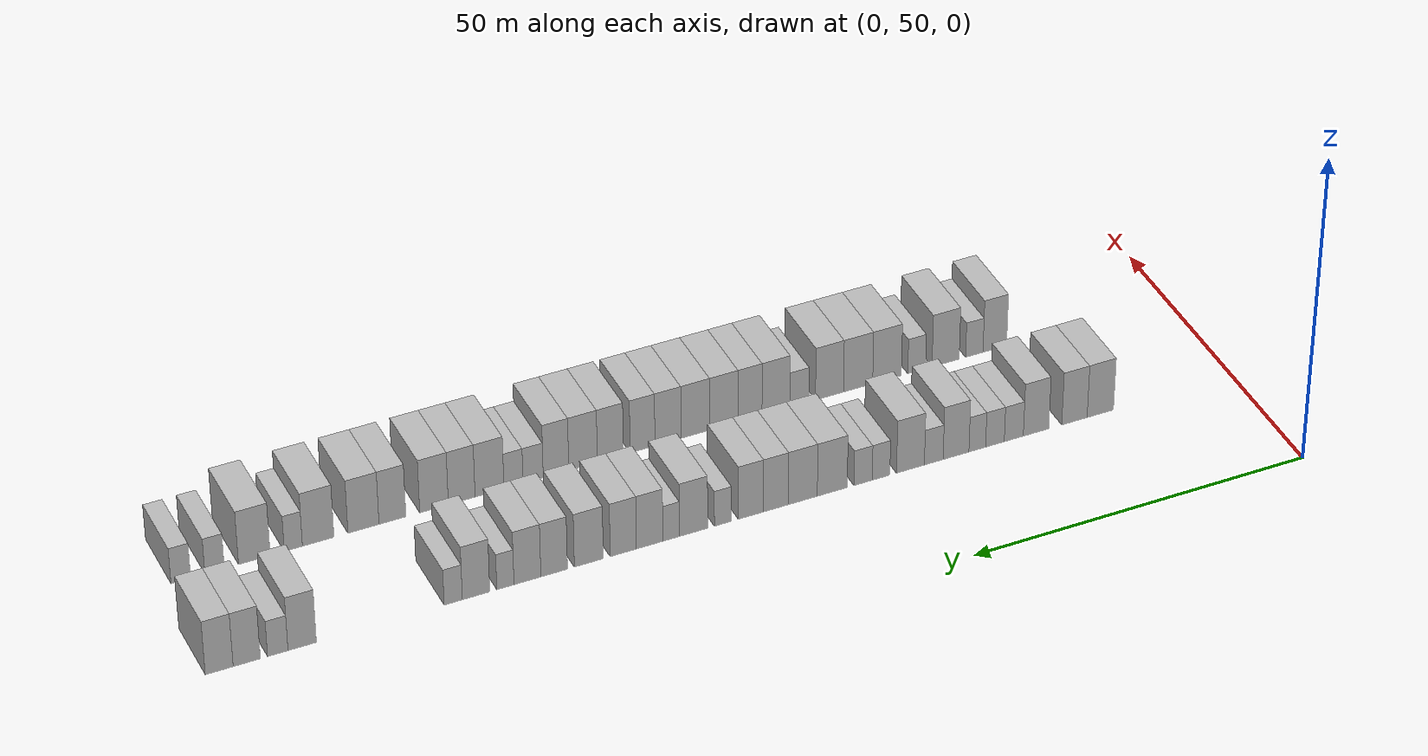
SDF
<sdf version="1.6">
 <world name="default">
  <model name="building_61">
   <static>1</static>
   <pose>25.0000 70.6246 0 0.000000 0.000000 0.000000</pose>
   <link name="link">
    <pose>0 0 4.50 0 0 0</pose>
    <collision name="collision"><geometry><box><size>10.0000 4.0791 9.0000</size></box></geometry></collision>
    <visual name="visual">
     <cast_shadows>0</cast_shadows>
     <geometry><box><size>10.0000 4.0791 9.0000</size></box></geometry>
     <material>
      <script>
       <uri>model://HANNAS_wall/materials/scripts</uri>
       <uri>model://HANNAS_wall/materials/textures</uri>
       <name>vrc/HANNAS_wall</name>
      </script>
     </material>
    </visual>
   </link>
  </model>
  <model name="building_62">
   <static>1</static>
   <pose>25.0000 74.6228 0 0.000000 0.000000 0.000000</pose>
   <link name="link">
    <pose>0 0 4.50 0 0 0</pose>
    <collision name="collision"><geometry><box><size>10.0000 3.9172 9.0000</size></box></geometry></collision>
    <visual name="visual">
     <cast_shadows>0</cast_shadows>
     <geometry><box><size>10.0000 3.9172 9.0000</size></box></geometry>
     <material>
      <script>
       <uri>model://HANNAS_wall/materials/scripts</uri>
       <uri>model://HANNAS_wall/materials/textures</uri>
       <name>vrc/HANNAS_wall</name>
      </script>
     </material>
    </visual>
   </link>
  </model>
  <model name="building_63">
   <static>1</static>
   <pose>25.0000 80.5359 0 0.000000 0.000000 0.000000</pose>
   <link name="link">
    <pose>0 0 4.50 0 0 0</pose>
    <collision name="collision"><geometry><box><size>10.0000 3.9089 9.0000</size></box></geometry></collision>
    <visual name="visual">
     <cast_shadows>0</cast_shadows>
     <geometry><box><size>10.0000 3.9089 9.0000</size></box></geometry>
     <material>
      <script>
       <uri>model://HANNAS_wall/materials/scripts</uri>
       <uri>model://HANNAS_wall/materials/textures</uri>
       <name>vrc/HANNAS_wall</name>
      </script>
     </material>
    </visual>
   </link>
  </model>
  <model name="building_64">
   <static>1</static>
   <pose>25.0000 83.9480 0 0.000000 0.000000 0.000000</pose>
   <link name="link">
    <pose>0 0 3.00 0 0 0</pose>
    <collision name="collision"><geometry><box><size>10.0000 2.9154 6.0000</size></box></geometry></collision>
    <visual name="visual">
     <cast_shadows>0</cast_shadows>
     <geometry><box><size>10.0000 2.9154 6.0000</size></box></geometry>
     <material>
      <script>
       <uri>model://HANNAS_wall/materials/scripts</uri>
       <uri>model://HANNAS_wall/materials/textures</uri>
       <name>vrc/HANNAS_wall</name>
      </script>
     </material>
    </visual>
   </link>
  </model>
  <model name="building_65">
   <static>1</static>
   <pose>25.0000 86.8324 0 0.000000 0.000000 0.000000</pose>
   <link name="link">
    <pose>0 0 3.00 0 0 0</pose>
    <collision name="collision"><geometry><box><size>10.0000 2.8534 6.0000</size></box></geometry></collision>
    <visual name="visual">
     <cast_shadows>0</cast_shadows>
     <geometry><box><size>10.0000 2.8534 6.0000</size></box></geometry>
     <material>
      <script>
       <uri>model://HANNAS_wall/materials/scripts</uri>
       <uri>model://HANNAS_wall/materials/textures</uri>
       <name>vrc/HANNAS_wall</name>
      </script>
     </material>
    </visual>
   </link>
  </model>
  <model name="building_66">
   <static>1</static>
   <pose>25.0000 89.5290 0 0.000000 0.000000 0.000000</pose>
   <link name="link">
    <pose>0 0 3.00 0 0 0</pose>
    <collision name="collision"><geometry><box><size>10.0000 2.5396 6.0000</size></box></geometry></collision>
    <visual name="visual">
     <cast_shadows>0</cast_shadows>
     <geometry><box><size>10.0000 2.5396 6.0000</size></box></geometry>
     <material>
      <script>
       <uri>model://HANNAS_wall/materials/scripts</uri>
       <uri>model://HANNAS_wall/materials/textures</uri>
       <name>vrc/HANNAS_wall</name>
      </script>
     </material>
    </visual>
   </link>
  </model>
  <model name="building_67">
   <static>1</static>
   <pose>25.0000 92.7599 0 0.000000 0.000000 0.000000</pose>
   <link name="link">
    <pose>0 0 4.50 0 0 0</pose>
    <collision name="collision"><geometry><box><size>10.0000 3.9223 9.0000</size></box></geometry></collision>
    <visual name="visual">
     <cast_shadows>0</cast_shadows>
     <geometry><box><size>10.0000 3.9223 9.0000</size></box></geometry>
     <material>
      <script>
       <uri>model://HANNAS_wall/materials/scripts</uri>
       <uri>model://HANNAS_wall/materials/textures</uri>
       <name>vrc/HANNAS_wall</name>
      </script>
     </material>
    </visual>
   </link>
  </model>
  <model name="building_68">
   <static>1</static>
   <pose>25.0000 96.1398 0 0.000000 0.000000 0.000000</pose>
   <link name="link">
    <pose>0 0 3.00 0 0 0</pose>
    <collision name="collision"><geometry><box><size>10.0000 2.8376 6.0000</size></box></geometry></collision>
    <visual name="visual">
     <cast_shadows>0</cast_shadows>
     <geometry><box><size>10.0000 2.8376 6.0000</size></box></geometry>
     <material>
      <script>
       <uri>model://HANNAS_wall/materials/scripts</uri>
       <uri>model://HANNAS_wall/materials/textures</uri>
       <name>vrc/HANNAS_wall</name>
      </script>
     </material>
    </visual>
   </link>
  </model>
  <model name="building_69">
   <static>1</static>
   <pose>25.0000 99.6629 0 0.000000 0.000000 0.000000</pose>
   <link name="link">
    <pose>0 0 4.50 0 0 0</pose>
    <collision name="collision"><geometry><box><size>10.0000 4.2086 9.0000</size></box></geometry></collision>
    <visual name="visual">
     <cast_shadows>0</cast_shadows>
     <geometry><box><size>10.0000 4.2086 9.0000</size></box></geometry>
     <material>
      <script>
       <uri>model://HANNAS_wall/materials/scripts</uri>
       <uri>model://HANNAS_wall/materials/textures</uri>
       <name>vrc/HANNAS_wall</name>
      </script>
     </material>
    </visual>
   </link>
  </model>
  <model name="building_70">
   <static>1</static>
   <pose>25.0000 104.0911 0 0.000000 0.000000 0.000000</pose>
   <link name="link">
    <pose>0 0 3.00 0 0 0</pose>
    <collision name="collision"><geometry><box><size>10.0000 2.6479 6.0000</size></box></geometry></collision>
    <visual name="visual">
     <cast_shadows>0</cast_shadows>
     <geometry><box><size>10.0000 2.6479 6.0000</size></box></geometry>
     <material>
      <script>
       <uri>model://HANNAS_wall/materials/scripts</uri>
       <uri>model://HANNAS_wall/materials/textures</uri>
       <name>vrc/HANNAS_wall</name>
      </script>
     </material>
    </visual>
   </link>
  </model>
  <model name="building_71">
   <static>1</static>
   <pose>25.0000 106.7862 0 0.000000 0.000000 0.000000</pose>
   <link name="link">
    <pose>0 0 3.00 0 0 0</pose>
    <collision name="collision"><geometry><box><size>10.0000 2.7424 6.0000</size></box></geometry></collision>
    <visual name="visual">
     <cast_shadows>0</cast_shadows>
     <geometry><box><size>10.0000 2.7424 6.0000</size></box></geometry>
     <material>
      <script>
       <uri>model://HANNAS_wall/materials/scripts</uri>
       <uri>model://HANNAS_wall/materials/textures</uri>
       <name>vrc/HANNAS_wall</name>
      </script>
     </material>
    </visual>
   </link>
  </model>
  <model name="building_72">
   <static>1</static>
   <pose>25.0000 111.3942 0 0.000000 0.000000 0.000000</pose>
   <link name="link">
    <pose>0 0 4.50 0 0 0</pose>
    <collision name="collision"><geometry><box><size>10.0000 4.4736 9.0000</size></box></geometry></collision>
    <visual name="visual">
     <cast_shadows>0</cast_shadows>
     <geometry><box><size>10.0000 4.4736 9.0000</size></box></geometry>
     <material>
      <script>
       <uri>model://HANNAS_wall/materials/scripts</uri>
       <uri>model://HANNAS_wall/materials/textures</uri>
       <name>vrc/HANNAS_wall</name>
      </script>
     </material>
    </visual>
   </link>
  </model>
  <model name="building_73">
   <static>1</static>
   <pose>25.0000 115.7814 0 0.000000 0.000000 0.000000</pose>
   <link name="link">
    <pose>0 0 4.50 0 0 0</pose>
    <collision name="collision"><geometry><box><size>10.0000 4.3008 9.0000</size></box></geometry></collision>
    <visual name="visual">
     <cast_shadows>0</cast_shadows>
     <geometry><box><size>10.0000 4.3008 9.0000</size></box></geometry>
     <material>
      <script>
       <uri>model://HANNAS_wall/materials/scripts</uri>
       <uri>model://HANNAS_wall/materials/textures</uri>
       <name>vrc/HANNAS_wall</name>
      </script>
     </material>
    </visual>
   </link>
  </model>
  <model name="building_74">
   <static>1</static>
   <pose>25.0000 119.7769 0 0.000000 0.000000 0.000000</pose>
   <link name="link">
    <pose>0 0 4.50 0 0 0</pose>
    <collision name="collision"><geometry><box><size>10.0000 3.6903 9.0000</size></box></geometry></collision>
    <visual name="visual">
     <cast_shadows>0</cast_shadows>
     <geometry><box><size>10.0000 3.6903 9.0000</size></box></geometry>
     <material>
      <script>
       <uri>model://HANNAS_wall/materials/scripts</uri>
       <uri>model://HANNAS_wall/materials/textures</uri>
       <name>vrc/HANNAS_wall</name>
      </script>
     </material>
    </visual>
   </link>
  </model>
  <model name="building_75">
   <static>1</static>
   <pose>25.0000 123.4768 0 0.000000 0.000000 0.000000</pose>
   <link name="link">
    <pose>0 0 4.50 0 0 0</pose>
    <collision name="collision"><geometry><box><size>10.0000 3.7094 9.0000</size></box></geometry></collision>
    <visual name="visual">
     <cast_shadows>0</cast_shadows>
     <geometry><box><size>10.0000 3.7094 9.0000</size></box></geometry>
     <material>
      <script>
       <uri>model://HANNAS_wall/materials/scripts</uri>
       <uri>model://HANNAS_wall/materials/textures</uri>
       <name>vrc/HANNAS_wall</name>
      </script>
     </material>
    </visual>
   </link>
  </model>
  <model name="building_76">
   <static>1</static>
   <pose>25.0000 127.5889 0 0.000000 0.000000 0.000000</pose>
   <link name="link">
    <pose>0 0 3.00 0 0 0</pose>
    <collision name="collision"><geometry><box><size>10.0000 2.5148 6.0000</size></box></geometry></collision>
    <visual name="visual">
     <cast_shadows>0</cast_shadows>
     <geometry><box><size>10.0000 2.5148 6.0000</size></box></geometry>
     <material>
      <script>
       <uri>model://HANNAS_wall/materials/scripts</uri>
       <uri>model://HANNAS_wall/materials/textures</uri>
       <name>vrc/HANNAS_wall</name>
      </script>
     </material>
    </visual>
   </link>
  </model>
  <model name="building_77">
   <static>1</static>
   <pose>25.0000 131.9084 0 0.000000 0.000000 0.000000</pose>
   <link name="link">
    <pose>0 0 4.50 0 0 0</pose>
    <collision name="collision"><geometry><box><size>10.0000 4.1241 9.0000</size></box></geometry></collision>
    <visual name="visual">
     <cast_shadows>0</cast_shadows>
     <geometry><box><size>10.0000 4.1241 9.0000</size></box></geometry>
     <material>
      <script>
       <uri>model://HANNAS_wall/materials/scripts</uri>
       <uri>model://HANNAS_wall/materials/textures</uri>
       <name>vrc/HANNAS_wall</name>
      </script>
     </material>
    </visual>
   </link>
  </model>
  <model name="building_78">
   <static>1</static>
   <pose>25.0000 135.1835 0 0.000000 0.000000 0.000000</pose>
   <link name="link">
    <pose>0 0 3.00 0 0 0</pose>
    <collision name="collision"><geometry><box><size>10.0000 2.4263 6.0000</size></box></geometry></collision>
    <visual name="visual">
     <cast_shadows>0</cast_shadows>
     <geometry><box><size>10.0000 2.4263 6.0000</size></box></geometry>
     <material>
      <script>
       <uri>model://HANNAS_wall/materials/scripts</uri>
       <uri>model://HANNAS_wall/materials/textures</uri>
       <name>vrc/HANNAS_wall</name>
      </script>
     </material>
    </visual>
   </link>
  </model>
  <model name="building_79">
   <static>1</static>
   <pose>25.0000 138.3177 0 0.000000 0.000000 0.000000</pose>
   <link name="link">
    <pose>0 0 4.50 0 0 0</pose>
    <collision name="collision"><geometry><box><size>10.0000 3.8421 9.0000</size></box></geometry></collision>
    <visual name="visual">
     <cast_shadows>0</cast_shadows>
     <geometry><box><size>10.0000 3.8421 9.0000</size></box></geometry>
     <material>
      <script>
       <uri>model://HANNAS_wall/materials/scripts</uri>
       <uri>model://HANNAS_wall/materials/textures</uri>
       <name>vrc/HANNAS_wall</name>
      </script>
     </material>
    </visual>
   </link>
  </model>
  <model name="building_80">
   <static>1</static>
   <pose>25.0000 142.1424 0 0.000000 0.000000 0.000000</pose>
   <link name="link">
    <pose>0 0 4.50 0 0 0</pose>
    <collision name="collision"><geometry><box><size>10.0000 3.8073 9.0000</size></box></geometry></collision>
    <visual name="visual">
     <cast_shadows>0</cast_shadows>
     <geometry><box><size>10.0000 3.8073 9.0000</size></box></geometry>
     <material>
      <script>
       <uri>model://HANNAS_wall/materials/scripts</uri>
       <uri>model://HANNAS_wall/materials/textures</uri>
       <name>vrc/HANNAS_wall</name>
      </script>
     </material>
    </visual>
   </link>
  </model>
  <model name="building_81">
   <static>1</static>
   <pose>25.0000 147.1362 0 0.000000 0.000000 0.000000</pose>
   <link name="link">
    <pose>0 0 4.50 0 0 0</pose>
    <collision name="collision"><geometry><box><size>10.0000 4.1803 9.0000</size></box></geometry></collision>
    <visual name="visual">
     <cast_shadows>0</cast_shadows>
     <geometry><box><size>10.0000 4.1803 9.0000</size></box></geometry>
     <material>
      <script>
       <uri>model://HANNAS_wall/materials/scripts</uri>
       <uri>model://HANNAS_wall/materials/textures</uri>
       <name>vrc/HANNAS_wall</name>
      </script>
     </material>
    </visual>
   </link>
  </model>
  <model name="building_82">
   <static>1</static>
   <pose>25.0000 152.1332 0 0.000000 0.000000 0.000000</pose>
   <link name="link">
    <pose>0 0 4.50 0 0 0</pose>
    <collision name="collision"><geometry><box><size>10.0000 3.8137 9.0000</size></box></geometry></collision>
    <visual name="visual">
     <cast_shadows>0</cast_shadows>
     <geometry><box><size>10.0000 3.8137 9.0000</size></box></geometry>
     <material>
      <script>
       <uri>model://HANNAS_wall/materials/scripts</uri>
       <uri>model://HANNAS_wall/materials/textures</uri>
       <name>vrc/HANNAS_wall</name>
      </script>
     </material>
    </visual>
   </link>
  </model>
  <model name="building_83">
   <static>1</static>
   <pose>25.0000 155.9653 0 0.000000 0.000000 0.000000</pose>
   <link name="link">
    <pose>0 0 4.50 0 0 0</pose>
    <collision name="collision"><geometry><box><size>10.0000 3.8506 9.0000</size></box></geometry></collision>
    <visual name="visual">
     <cast_shadows>0</cast_shadows>
     <geometry><box><size>10.0000 3.8506 9.0000</size></box></geometry>
     <material>
      <script>
       <uri>model://HANNAS_wall/materials/scripts</uri>
       <uri>model://HANNAS_wall/materials/textures</uri>
       <name>vrc/HANNAS_wall</name>
      </script>
     </material>
    </visual>
   </link>
  </model>
  <model name="building_84">
   <static>1</static>
   <pose>25.0000 159.1176 0 0.000000 0.000000 0.000000</pose>
   <link name="link">
    <pose>0 0 3.00 0 0 0</pose>
    <collision name="collision"><geometry><box><size>10.0000 2.4538 6.0000</size></box></geometry></collision>
    <visual name="visual">
     <cast_shadows>0</cast_shadows>
     <geometry><box><size>10.0000 2.4538 6.0000</size></box></geometry>
     <material>
      <script>
       <uri>model://HANNAS_wall/materials/scripts</uri>
       <uri>model://HANNAS_wall/materials/textures</uri>
       <name>vrc/HANNAS_wall</name>
      </script>
     </material>
    </visual>
   </link>
  </model>
  <model name="building_85">
   <static>1</static>
   <pose>25.0000 163.2912 0 0.000000 0.000000 0.000000</pose>
   <link name="link">
    <pose>0 0 4.50 0 0 0</pose>
    <collision name="collision"><geometry><box><size>10.0000 3.8934 9.0000</size></box></geometry></collision>
    <visual name="visual">
     <cast_shadows>0</cast_shadows>
     <geometry><box><size>10.0000 3.8934 9.0000</size></box></geometry>
     <material>
      <script>
       <uri>model://HANNAS_wall/materials/scripts</uri>
       <uri>model://HANNAS_wall/materials/textures</uri>
       <name>vrc/HANNAS_wall</name>
      </script>
     </material>
    </visual>
   </link>
  </model>
  <model name="building_86">
   <static>1</static>
   <pose>25.0000 166.5308 0 0.000000 0.000000 0.000000</pose>
   <link name="link">
    <pose>0 0 3.00 0 0 0</pose>
    <collision name="collision"><geometry><box><size>10.0000 2.5858 6.0000</size></box></geometry></collision>
    <visual name="visual">
     <cast_shadows>0</cast_shadows>
     <geometry><box><size>10.0000 2.5858 6.0000</size></box></geometry>
     <material>
      <script>
       <uri>model://HANNAS_wall/materials/scripts</uri>
       <uri>model://HANNAS_wall/materials/textures</uri>
       <name>vrc/HANNAS_wall</name>
      </script>
     </material>
    </visual>
   </link>
  </model>
  <model name="building_87">
   <static>1</static>
   <pose>25.0000 187.7361 0 0.000000 0.000000 0.000000</pose>
   <link name="link">
    <pose>0 0 4.50 0 0 0</pose>
    <collision name="collision"><geometry><box><size>10.0000 3.9416 9.0000</size></box></geometry></collision>
    <visual name="visual">
     <cast_shadows>0</cast_shadows>
     <geometry><box><size>10.0000 3.9416 9.0000</size></box></geometry>
     <material>
      <script>
       <uri>model://HANNAS_wall/materials/scripts</uri>
       <uri>model://HANNAS_wall/materials/textures</uri>
       <name>vrc/HANNAS_wall</name>
      </script>
     </material>
    </visual>
   </link>
  </model>
  <model name="building_88">
   <static>1</static>
   <pose>25.0000 191.1183 0 0.000000 0.000000 0.000000</pose>
   <link name="link">
    <pose>0 0 3.00 0 0 0</pose>
    <collision name="collision"><geometry><box><size>10.0000 2.8229 6.0000</size></box></geometry></collision>
    <visual name="visual">
     <cast_shadows>0</cast_shadows>
     <geometry><box><size>10.0000 2.8229 6.0000</size></box></geometry>
     <material>
      <script>
       <uri>model://HANNAS_wall/materials/scripts</uri>
       <uri>model://HANNAS_wall/materials/textures</uri>
       <name>vrc/HANNAS_wall</name>
      </script>
     </material>
    </visual>
   </link>
  </model>
  <model name="building_89">
   <static>1</static>
   <pose>25.0000 195.4052 0 0.000000 0.000000 0.000000</pose>
   <link name="link">
    <pose>0 0 4.50 0 0 0</pose>
    <collision name="collision"><geometry><box><size>10.0000 3.7509 9.0000</size></box></geometry></collision>
    <visual name="visual">
     <cast_shadows>0</cast_shadows>
     <geometry><box><size>10.0000 3.7509 9.0000</size></box></geometry>
     <material>
      <script>
       <uri>model://HANNAS_wall/materials/scripts</uri>
       <uri>model://HANNAS_wall/materials/textures</uri>
       <name>vrc/HANNAS_wall</name>
      </script>
     </material>
    </visual>
   </link>
  </model>
  <model name="building_90">
   <static>1</static>
   <pose>25.0000 199.1994 0 0.000000 0.000000 0.000000</pose>
   <link name="link">
    <pose>0 0 4.50 0 0 0</pose>
    <collision name="collision"><geometry><box><size>10.0000 3.8375 9.0000</size></box></geometry></collision>
    <visual name="visual">
     <cast_shadows>0</cast_shadows>
     <geometry><box><size>10.0000 3.8375 9.0000</size></box></geometry>
     <material>
      <script>
       <uri>model://HANNAS_wall/materials/scripts</uri>
       <uri>model://HANNAS_wall/materials/textures</uri>
       <name>vrc/HANNAS_wall</name>
      </script>
     </material>
    </visual>
   </link>
  </model>
  <model name="building_148">
   <static>1</static>
   <pose>44.0000 77.2505 0 0.000000 0.000000 0.000000</pose>
   <link name="link">
    <pose>0 0 4.50 0 0 0</pose>
    <collision name="collision"><geometry><box><size>10.0000 3.6897 9.0000</size></box></geometry></collision>
    <visual name="visual">
     <cast_shadows>0</cast_shadows>
     <geometry><box><size>10.0000 3.6897 9.0000</size></box></geometry>
     <material>
      <script>
       <uri>model://HANNAS_wall/materials/scripts</uri>
       <uri>model://HANNAS_wall/materials/textures</uri>
       <name>vrc/HANNAS_wall</name>
      </script>
     </material>
    </visual>
   </link>
  </model>
  <model name="building_149">
   <static>1</static>
   <pose>44.0000 80.4499 0 0.000000 0.000000 0.000000</pose>
   <link name="link">
    <pose>0 0 3.00 0 0 0</pose>
    <collision name="collision"><geometry><box><size>10.0000 2.7090 6.0000</size></box></geometry></collision>
    <visual name="visual">
     <cast_shadows>0</cast_shadows>
     <geometry><box><size>10.0000 2.7090 6.0000</size></box></geometry>
     <material>
      <script>
       <uri>model://HANNAS_wall/materials/scripts</uri>
       <uri>model://HANNAS_wall/materials/textures</uri>
       <name>vrc/HANNAS_wall</name>
      </script>
     </material>
    </visual>
   </link>
  </model>
  <model name="building_150">
   <static>1</static>
   <pose>44.0000 84.9104 0 0.000000 0.000000 0.000000</pose>
   <link name="link">
    <pose>0 0 4.50 0 0 0</pose>
    <collision name="collision"><geometry><box><size>10.0000 4.2119 9.0000</size></box></geometry></collision>
    <visual name="visual">
     <cast_shadows>0</cast_shadows>
     <geometry><box><size>10.0000 4.2119 9.0000</size></box></geometry>
     <material>
      <script>
       <uri>model://HANNAS_wall/materials/scripts</uri>
       <uri>model://HANNAS_wall/materials/textures</uri>
       <name>vrc/HANNAS_wall</name>
      </script>
     </material>
    </visual>
   </link>
  </model>
  <model name="building_151">
   <static>1</static>
   <pose>44.0000 89.3898 0 0.000000 0.000000 0.000000</pose>
   <link name="link">
    <pose>0 0 3.00 0 0 0</pose>
    <collision name="collision"><geometry><box><size>10.0000 2.7470 6.0000</size></box></geometry></collision>
    <visual name="visual">
     <cast_shadows>0</cast_shadows>
     <geometry><box><size>10.0000 2.7470 6.0000</size></box></geometry>
     <material>
      <script>
       <uri>model://HANNAS_wall/materials/scripts</uri>
       <uri>model://HANNAS_wall/materials/textures</uri>
       <name>vrc/HANNAS_wall</name>
      </script>
     </material>
    </visual>
   </link>
  </model>
  <model name="building_152">
   <static>1</static>
   <pose>44.0000 93.9681 0 0.000000 0.000000 0.000000</pose>
   <link name="link">
    <pose>0 0 4.50 0 0 0</pose>
    <collision name="collision"><geometry><box><size>10.0000 4.4094 9.0000</size></box></geometry></collision>
    <visual name="visual">
     <cast_shadows>0</cast_shadows>
     <geometry><box><size>10.0000 4.4094 9.0000</size></box></geometry>
     <material>
      <script>
       <uri>model://HANNAS_wall/materials/scripts</uri>
       <uri>model://HANNAS_wall/materials/textures</uri>
       <name>vrc/HANNAS_wall</name>
      </script>
     </material>
    </visual>
   </link>
  </model>
  <model name="building_153">
   <static>1</static>
   <pose>44.0000 98.4104 0 0.000000 0.000000 0.000000</pose>
   <link name="link">
    <pose>0 0 4.50 0 0 0</pose>
    <collision name="collision"><geometry><box><size>10.0000 4.4751 9.0000</size></box></geometry></collision>
    <visual name="visual">
     <cast_shadows>0</cast_shadows>
     <geometry><box><size>10.0000 4.4751 9.0000</size></box></geometry>
     <material>
      <script>
       <uri>model://HANNAS_wall/materials/scripts</uri>
       <uri>model://HANNAS_wall/materials/textures</uri>
       <name>vrc/HANNAS_wall</name>
      </script>
     </material>
    </visual>
   </link>
  </model>
  <model name="building_154">
   <static>1</static>
   <pose>44.0000 102.7875 0 0.000000 0.000000 0.000000</pose>
   <link name="link">
    <pose>0 0 4.50 0 0 0</pose>
    <collision name="collision"><geometry><box><size>10.0000 4.2791 9.0000</size></box></geometry></collision>
    <visual name="visual">
     <cast_shadows>0</cast_shadows>
     <geometry><box><size>10.0000 4.2791 9.0000</size></box></geometry>
     <material>
      <script>
       <uri>model://HANNAS_wall/materials/scripts</uri>
       <uri>model://HANNAS_wall/materials/textures</uri>
       <name>vrc/HANNAS_wall</name>
      </script>
     </material>
    </visual>
   </link>
  </model>
  <model name="building_155">
   <static>1</static>
   <pose>44.0000 107.3727 0 0.000000 0.000000 0.000000</pose>
   <link name="link">
    <pose>0 0 3.00 0 0 0</pose>
    <collision name="collision"><geometry><box><size>10.0000 2.8914 6.0000</size></box></geometry></collision>
    <visual name="visual">
     <cast_shadows>0</cast_shadows>
     <geometry><box><size>10.0000 2.8914 6.0000</size></box></geometry>
     <material>
      <script>
       <uri>model://HANNAS_wall/materials/scripts</uri>
       <uri>model://HANNAS_wall/materials/textures</uri>
       <name>vrc/HANNAS_wall</name>
      </script>
     </material>
    </visual>
   </link>
  </model>
  <model name="building_156">
   <static>1</static>
   <pose>44.0000 110.9343 0 0.000000 0.000000 0.000000</pose>
   <link name="link">
    <pose>0 0 4.50 0 0 0</pose>
    <collision name="collision"><geometry><box><size>10.0000 4.2318 9.0000</size></box></geometry></collision>
    <visual name="visual">
     <cast_shadows>0</cast_shadows>
     <geometry><box><size>10.0000 4.2318 9.0000</size></box></geometry>
     <material>
      <script>
       <uri>model://HANNAS_wall/materials/scripts</uri>
       <uri>model://HANNAS_wall/materials/textures</uri>
       <name>vrc/HANNAS_wall</name>
      </script>
     </material>
    </visual>
   </link>
  </model>
  <model name="building_157">
   <static>1</static>
   <pose>44.0000 114.8592 0 0.000000 0.000000 0.000000</pose>
   <link name="link">
    <pose>0 0 4.50 0 0 0</pose>
    <collision name="collision"><geometry><box><size>10.0000 3.6180 9.0000</size></box></geometry></collision>
    <visual name="visual">
     <cast_shadows>0</cast_shadows>
     <geometry><box><size>10.0000 3.6180 9.0000</size></box></geometry>
     <material>
      <script>
       <uri>model://HANNAS_wall/materials/scripts</uri>
       <uri>model://HANNAS_wall/materials/textures</uri>
       <name>vrc/HANNAS_wall</name>
      </script>
     </material>
    </visual>
   </link>
  </model>
  <model name="building_158">
   <static>1</static>
   <pose>44.0000 118.7999 0 0.000000 0.000000 0.000000</pose>
   <link name="link">
    <pose>0 0 4.50 0 0 0</pose>
    <collision name="collision"><geometry><box><size>10.0000 4.2632 9.0000</size></box></geometry></collision>
    <visual name="visual">
     <cast_shadows>0</cast_shadows>
     <geometry><box><size>10.0000 4.2632 9.0000</size></box></geometry>
     <material>
      <script>
       <uri>model://HANNAS_wall/materials/scripts</uri>
       <uri>model://HANNAS_wall/materials/textures</uri>
       <name>vrc/HANNAS_wall</name>
      </script>
     </material>
    </visual>
   </link>
  </model>
  <model name="building_159">
   <static>1</static>
   <pose>44.0000 123.0804 0 0.000000 0.000000 0.000000</pose>
   <link name="link">
    <pose>0 0 4.50 0 0 0</pose>
    <collision name="collision"><geometry><box><size>10.0000 4.2978 9.0000</size></box></geometry></collision>
    <visual name="visual">
     <cast_shadows>0</cast_shadows>
     <geometry><box><size>10.0000 4.2978 9.0000</size></box></geometry>
     <material>
      <script>
       <uri>model://HANNAS_wall/materials/scripts</uri>
       <uri>model://HANNAS_wall/materials/textures</uri>
       <name>vrc/HANNAS_wall</name>
      </script>
     </material>
    </visual>
   </link>
  </model>
  <model name="building_160">
   <static>1</static>
   <pose>44.0000 127.1789 0 0.000000 0.000000 0.000000</pose>
   <link name="link">
    <pose>0 0 4.50 0 0 0</pose>
    <collision name="collision"><geometry><box><size>10.0000 3.8992 9.0000</size></box></geometry></collision>
    <visual name="visual">
     <cast_shadows>0</cast_shadows>
     <geometry><box><size>10.0000 3.8992 9.0000</size></box></geometry>
     <material>
      <script>
       <uri>model://HANNAS_wall/materials/scripts</uri>
       <uri>model://HANNAS_wall/materials/textures</uri>
       <name>vrc/HANNAS_wall</name>
      </script>
     </material>
    </visual>
   </link>
  </model>
  <model name="building_161">
   <static>1</static>
   <pose>44.0000 130.9789 0 0.000000 0.000000 0.000000</pose>
   <link name="link">
    <pose>0 0 4.50 0 0 0</pose>
    <collision name="collision"><geometry><box><size>10.0000 3.7009 9.0000</size></box></geometry></collision>
    <visual name="visual">
     <cast_shadows>0</cast_shadows>
     <geometry><box><size>10.0000 3.7009 9.0000</size></box></geometry>
     <material>
      <script>
       <uri>model://HANNAS_wall/materials/scripts</uri>
       <uri>model://HANNAS_wall/materials/textures</uri>
       <name>vrc/HANNAS_wall</name>
      </script>
     </material>
    </visual>
   </link>
  </model>
  <model name="building_162">
   <static>1</static>
   <pose>44.0000 135.7583 0 0.000000 0.000000 0.000000</pose>
   <link name="link">
    <pose>0 0 4.50 0 0 0</pose>
    <collision name="collision"><geometry><box><size>10.0000 3.8578 9.0000</size></box></geometry></collision>
    <visual name="visual">
     <cast_shadows>0</cast_shadows>
     <geometry><box><size>10.0000 3.8578 9.0000</size></box></geometry>
     <material>
      <script>
       <uri>model://HANNAS_wall/materials/scripts</uri>
       <uri>model://HANNAS_wall/materials/textures</uri>
       <name>vrc/HANNAS_wall</name>
      </script>
     </material>
    </visual>
   </link>
  </model>
  <model name="building_163">
   <static>1</static>
   <pose>44.0000 139.7975 0 0.000000 0.000000 0.000000</pose>
   <link name="link">
    <pose>0 0 4.50 0 0 0</pose>
    <collision name="collision"><geometry><box><size>10.0000 4.2206 9.0000</size></box></geometry></collision>
    <visual name="visual">
     <cast_shadows>0</cast_shadows>
     <geometry><box><size>10.0000 4.2206 9.0000</size></box></geometry>
     <material>
      <script>
       <uri>model://HANNAS_wall/materials/scripts</uri>
       <uri>model://HANNAS_wall/materials/textures</uri>
       <name>vrc/HANNAS_wall</name>
      </script>
     </material>
    </visual>
   </link>
  </model>
  <model name="building_164">
   <static>1</static>
   <pose>44.0000 143.7866 0 0.000000 0.000000 0.000000</pose>
   <link name="link">
    <pose>0 0 4.50 0 0 0</pose>
    <collision name="collision"><geometry><box><size>10.0000 3.7575 9.0000</size></box></geometry></collision>
    <visual name="visual">
     <cast_shadows>0</cast_shadows>
     <geometry><box><size>10.0000 3.7575 9.0000</size></box></geometry>
     <material>
      <script>
       <uri>model://HANNAS_wall/materials/scripts</uri>
       <uri>model://HANNAS_wall/materials/textures</uri>
       <name>vrc/HANNAS_wall</name>
      </script>
     </material>
    </visual>
   </link>
  </model>
  <model name="building_165">
   <static>1</static>
   <pose>44.0000 147.1452 0 0.000000 0.000000 0.000000</pose>
   <link name="link">
    <pose>0 0 3.00 0 0 0</pose>
    <collision name="collision"><geometry><box><size>10.0000 2.9597 6.0000</size></box></geometry></collision>
    <visual name="visual">
     <cast_shadows>0</cast_shadows>
     <geometry><box><size>10.0000 2.9597 6.0000</size></box></geometry>
     <material>
      <script>
       <uri>model://HANNAS_wall/materials/scripts</uri>
       <uri>model://HANNAS_wall/materials/textures</uri>
       <name>vrc/HANNAS_wall</name>
      </script>
     </material>
    </visual>
   </link>
  </model>
  <model name="building_166">
   <static>1</static>
   <pose>44.0000 150.0208 0 0.000000 0.000000 0.000000</pose>
   <link name="link">
    <pose>0 0 3.00 0 0 0</pose>
    <collision name="collision"><geometry><box><size>10.0000 2.7915 6.0000</size></box></geometry></collision>
    <visual name="visual">
     <cast_shadows>0</cast_shadows>
     <geometry><box><size>10.0000 2.7915 6.0000</size></box></geometry>
     <material>
      <script>
       <uri>model://HANNAS_wall/materials/scripts</uri>
       <uri>model://HANNAS_wall/materials/textures</uri>
       <name>vrc/HANNAS_wall</name>
      </script>
     </material>
    </visual>
   </link>
  </model>
  <model name="building_167">
   <static>1</static>
   <pose>44.0000 153.5196 0 0.000000 0.000000 0.000000</pose>
   <link name="link">
    <pose>0 0 4.50 0 0 0</pose>
    <collision name="collision"><geometry><box><size>10.0000 4.2060 9.0000</size></box></geometry></collision>
    <visual name="visual">
     <cast_shadows>0</cast_shadows>
     <geometry><box><size>10.0000 4.2060 9.0000</size></box></geometry>
     <material>
      <script>
       <uri>model://HANNAS_wall/materials/scripts</uri>
       <uri>model://HANNAS_wall/materials/textures</uri>
       <name>vrc/HANNAS_wall</name>
      </script>
     </material>
    </visual>
   </link>
  </model>
  <model name="building_168">
   <static>1</static>
   <pose>44.0000 157.5674 0 0.000000 0.000000 0.000000</pose>
   <link name="link">
    <pose>0 0 4.50 0 0 0</pose>
    <collision name="collision"><geometry><box><size>10.0000 3.8896 9.0000</size></box></geometry></collision>
    <visual name="visual">
     <cast_shadows>0</cast_shadows>
     <geometry><box><size>10.0000 3.8896 9.0000</size></box></geometry>
     <material>
      <script>
       <uri>model://HANNAS_wall/materials/scripts</uri>
       <uri>model://HANNAS_wall/materials/textures</uri>
       <name>vrc/HANNAS_wall</name>
      </script>
     </material>
    </visual>
   </link>
  </model>
  <model name="building_169">
   <static>1</static>
   <pose>44.0000 161.5811 0 0.000000 0.000000 0.000000</pose>
   <link name="link">
    <pose>0 0 4.50 0 0 0</pose>
    <collision name="collision"><geometry><box><size>10.0000 4.1379 9.0000</size></box></geometry></collision>
    <visual name="visual">
     <cast_shadows>0</cast_shadows>
     <geometry><box><size>10.0000 4.1379 9.0000</size></box></geometry>
     <material>
      <script>
       <uri>model://HANNAS_wall/materials/scripts</uri>
       <uri>model://HANNAS_wall/materials/textures</uri>
       <name>vrc/HANNAS_wall</name>
      </script>
     </material>
    </visual>
   </link>
  </model>
  <model name="building_170">
   <static>1</static>
   <pose>44.0000 167.5839 0 0.000000 0.000000 0.000000</pose>
   <link name="link">
    <pose>0 0 4.50 0 0 0</pose>
    <collision name="collision"><geometry><box><size>10.0000 3.8677 9.0000</size></box></geometry></collision>
    <visual name="visual">
     <cast_shadows>0</cast_shadows>
     <geometry><box><size>10.0000 3.8677 9.0000</size></box></geometry>
     <material>
      <script>
       <uri>model://HANNAS_wall/materials/scripts</uri>
       <uri>model://HANNAS_wall/materials/textures</uri>
       <name>vrc/HANNAS_wall</name>
      </script>
     </material>
    </visual>
   </link>
  </model>
  <model name="building_171">
   <static>1</static>
   <pose>44.0000 171.7452 0 0.000000 0.000000 0.000000</pose>
   <link name="link">
    <pose>0 0 4.50 0 0 0</pose>
    <collision name="collision"><geometry><box><size>10.0000 4.4549 9.0000</size></box></geometry></collision>
    <visual name="visual">
     <cast_shadows>0</cast_shadows>
     <geometry><box><size>10.0000 4.4549 9.0000</size></box></geometry>
     <material>
      <script>
       <uri>model://HANNAS_wall/materials/scripts</uri>
       <uri>model://HANNAS_wall/materials/textures</uri>
       <name>vrc/HANNAS_wall</name>
      </script>
     </material>
    </visual>
   </link>
  </model>
  <model name="building_172">
   <static>1</static>
   <pose>44.0000 178.2176 0 0.000000 0.000000 0.000000</pose>
   <link name="link">
    <pose>0 0 4.50 0 0 0</pose>
    <collision name="collision"><geometry><box><size>10.0000 4.4898 9.0000</size></box></geometry></collision>
    <visual name="visual">
     <cast_shadows>0</cast_shadows>
     <geometry><box><size>10.0000 4.4898 9.0000</size></box></geometry>
     <material>
      <script>
       <uri>model://HANNAS_wall/materials/scripts</uri>
       <uri>model://HANNAS_wall/materials/textures</uri>
       <name>vrc/HANNAS_wall</name>
      </script>
     </material>
    </visual>
   </link>
  </model>
  <model name="building_173">
   <static>1</static>
   <pose>44.0000 181.7484 0 0.000000 0.000000 0.000000</pose>
   <link name="link">
    <pose>0 0 3.00 0 0 0</pose>
    <collision name="collision"><geometry><box><size>10.0000 2.5718 6.0000</size></box></geometry></collision>
    <visual name="visual">
     <cast_shadows>0</cast_shadows>
     <geometry><box><size>10.0000 2.5718 6.0000</size></box></geometry>
     <material>
      <script>
       <uri>model://HANNAS_wall/materials/scripts</uri>
       <uri>model://HANNAS_wall/materials/textures</uri>
       <name>vrc/HANNAS_wall</name>
      </script>
     </material>
    </visual>
   </link>
  </model>
  <model name="building_174">
   <static>1</static>
   <pose>44.0000 187.2737 0 0.000000 0.000000 0.000000</pose>
   <link name="link">
    <pose>0 0 4.50 0 0 0</pose>
    <collision name="collision"><geometry><box><size>10.0000 4.4790 9.0000</size></box></geometry></collision>
    <visual name="visual">
     <cast_shadows>0</cast_shadows>
     <geometry><box><size>10.0000 4.4790 9.0000</size></box></geometry>
     <material>
      <script>
       <uri>model://HANNAS_wall/materials/scripts</uri>
       <uri>model://HANNAS_wall/materials/textures</uri>
       <name>vrc/HANNAS_wall</name>
      </script>
     </material>
    </visual>
   </link>
  </model>
  <model name="building_175">
   <static>1</static>
   <pose>44.0000 192.8754 0 0.000000 0.000000 0.000000</pose>
   <link name="link">
    <pose>0 0 3.00 0 0 0</pose>
    <collision name="collision"><geometry><box><size>10.0000 2.7244 6.0000</size></box></geometry></collision>
    <visual name="visual">
     <cast_shadows>0</cast_shadows>
     <geometry><box><size>10.0000 2.7244 6.0000</size></box></geometry>
     <material>
      <script>
       <uri>model://HANNAS_wall/materials/scripts</uri>
       <uri>model://HANNAS_wall/materials/textures</uri>
       <name>vrc/HANNAS_wall</name>
      </script>
     </material>
    </visual>
   </link>
  </model>
  <model name="building_176">
   <static>1</static>
   <pose>44.0000 197.6115 0 0.000000 0.000000 0.000000</pose>
   <link name="link">
    <pose>0 0 3.00 0 0 0</pose>
    <collision name="collision"><geometry><box><size>10.0000 2.7477 6.0000</size></box></geometry></collision>
    <visual name="visual">
     <cast_shadows>0</cast_shadows>
     <geometry><box><size>10.0000 2.7477 6.0000</size></box></geometry>
     <material>
      <script>
       <uri>model://HANNAS_wall/materials/scripts</uri>
       <uri>model://HANNAS_wall/materials/textures</uri>
       <name>vrc/HANNAS_wall</name>
      </script>
     </material>
    </visual>
   </link>
  </model>
 </world>
</sdf>
